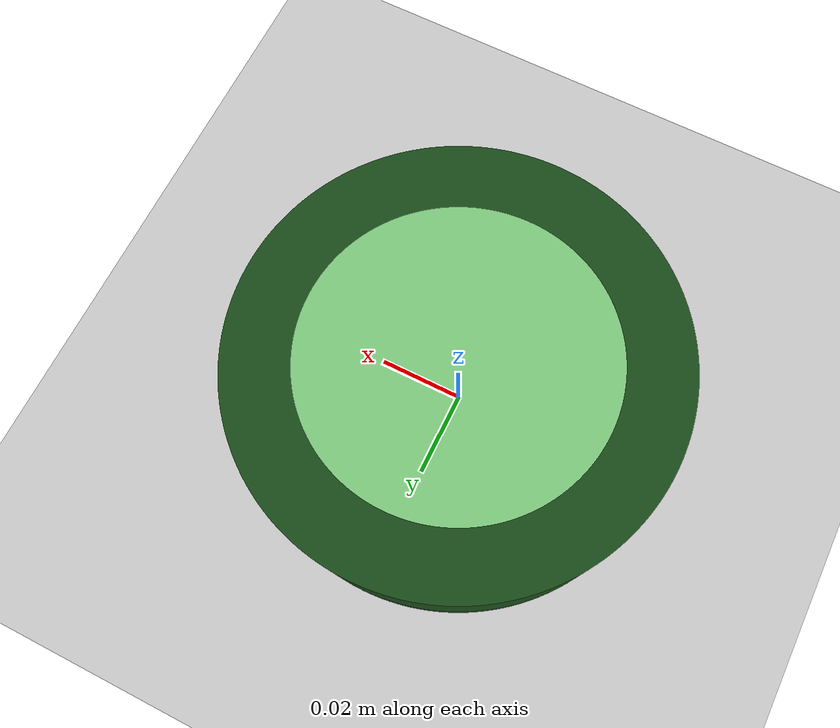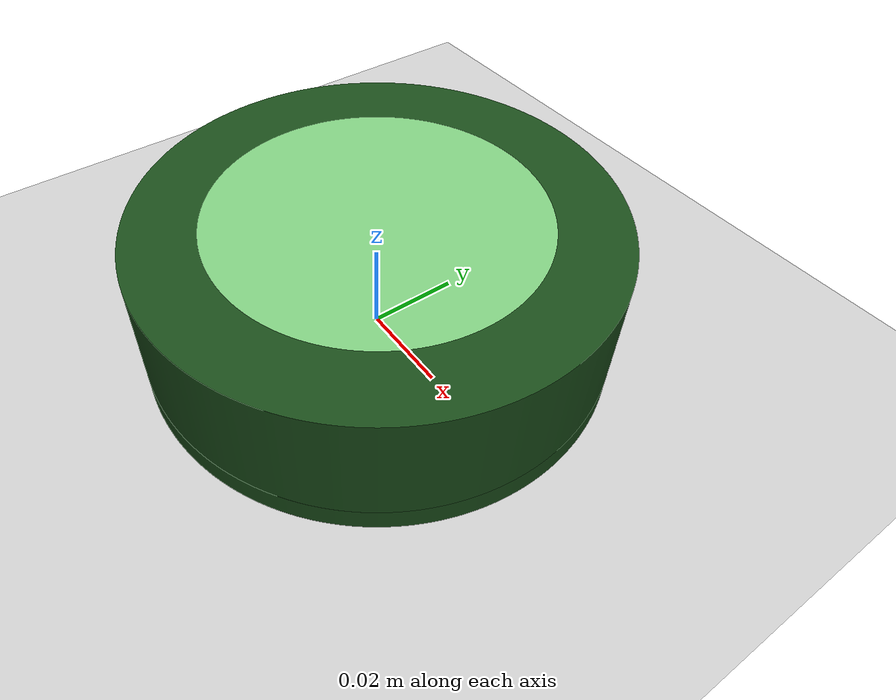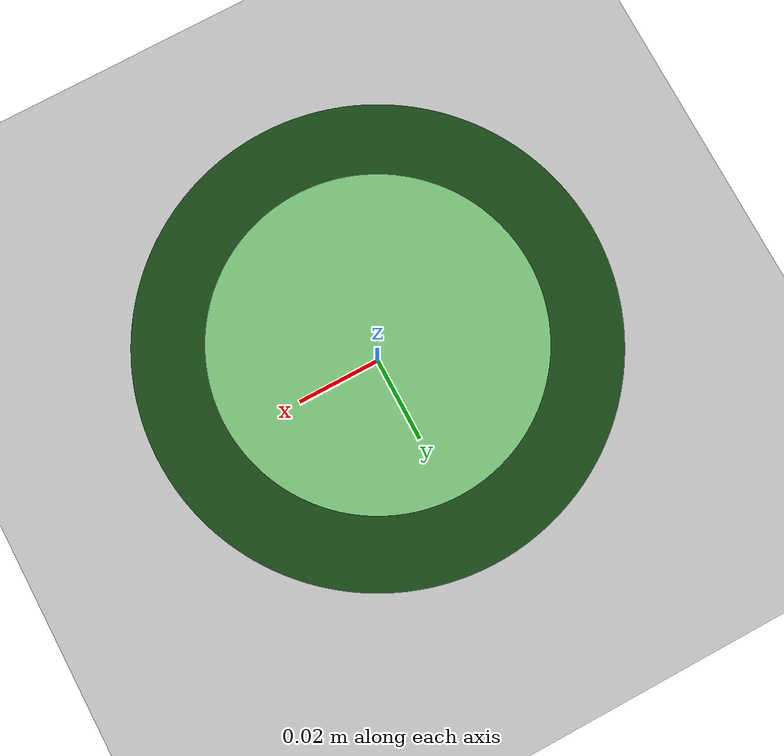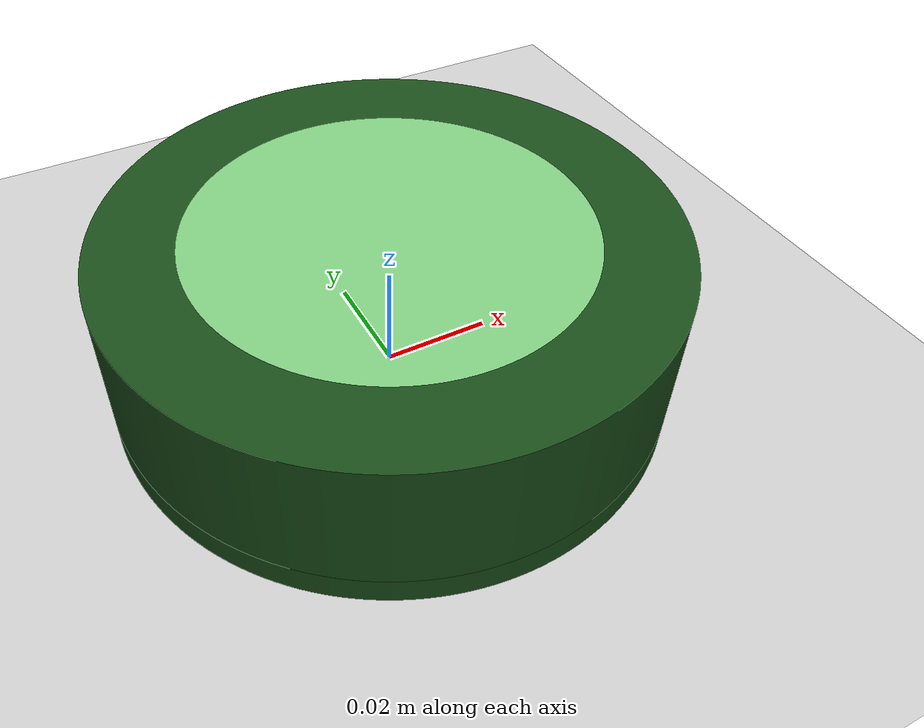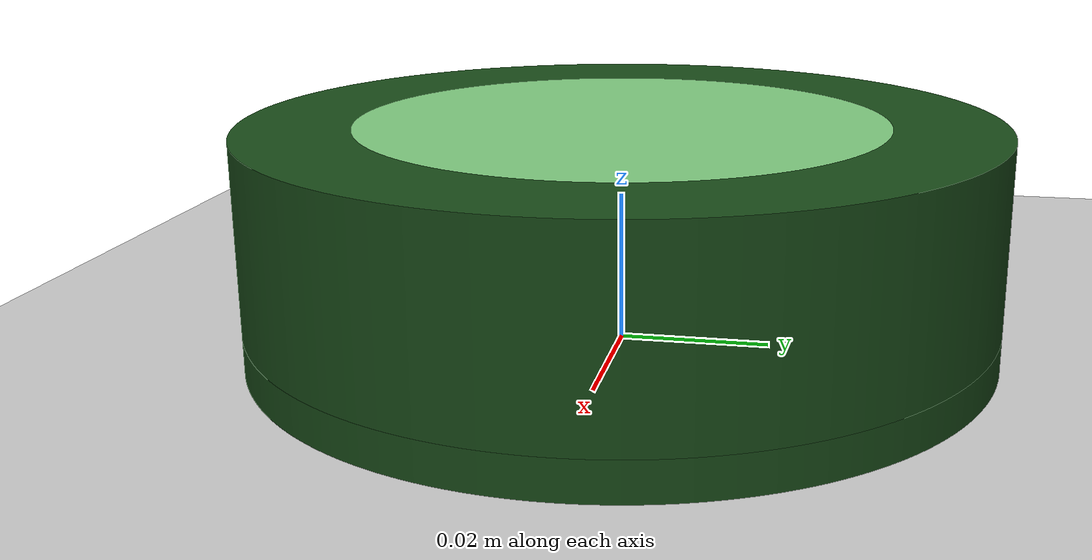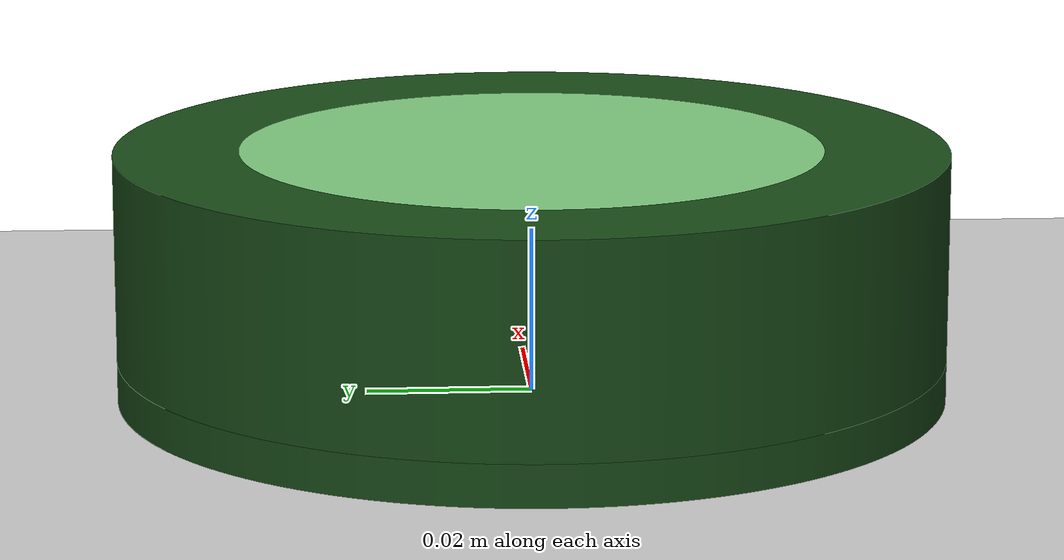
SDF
<?xml version="1.0" ?>
<sdf version="1.5">
  <world name="default">

    <!-- A global light source -->
    <include>
      <uri>model://sun</uri>
    </include>

    <!-- A ground plane -->
    <include>
      <uri>model://ground_plane</uri>
    </include>

    <include>
      <uri>model://DREAM_simple_button/</uri>
    </include>
  </world>
</sdf>

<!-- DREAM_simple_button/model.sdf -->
<sdf version="1.4">
  <model name="simple_push_button">
    <!-- The base is just a cylinder -->
    <link name="base">
      <pose>0 0 0.0 0 0 0</pose>
      <inertial>
        <mass>1</mass>
        <inertia>
          <ixx>0.002502083</ixx>
          <iyy>0.002502083</iyy>
          <izz>0.005</izz>
          <ixy>0</ixy>
          <ixz>0</ixz>
          <iyz>0</iyz>
        </inertia>
      </inertial>
      <collision name="base_collision">
        <geometry>
          <mesh>
              <uri>model://DREAM_simple_button/meshes/base_button.dae</uri>
          </mesh>
        </geometry>
        <surface>
          <friction>
            <ode>
              <mu>0.6</mu>
              <mu2>0.6</mu2>
            </ode>
          </friction>
        </surface>
      </collision>
      <visual name="base_visual">
        <geometry>
          <mesh>
              <uri>model://DREAM_simple_button/meshes/base_button.dae</uri>
          </mesh>
        </geometry>
        <material>
          <diffuse>0.1 0.3 0.1 1</diffuse>
          <ambient>0.1 0.15 0.1 1</ambient>
          <specular>0.5 0.6 0.5 1</specular>
          <emissive>0 0 0 0</emissive>
        </material>
        <plugin name="color_plugin" filename="libDREAM_change_color.so"/>
      </visual>
    </link>

    <link name="cylinder">
      <!-- Offset by the height of the base -->
      <pose>0 0 0.005 0 0 0</pose>
      <inertial>
        <mass>1</mass>
        <inertia>
          <ixx>0.003777083</ixx>
          <iyy>0.003777083</iyy>
          <izz>0.00745</izz>
          <ixy>0</ixy>
          <ixz>0</ixz>
          <iyz>0</iyz>
        </inertia>
      </inertial>
      <collision name="cylinder_collision">
        <geometry>
          <mesh>
              <uri>model://DREAM_simple_button/meshes/base_cylinder.dae</uri>
          </mesh>
        </geometry>
        <surface>
          <friction>
            <ode>
              <mu>0.6</mu>
              <mu2>0.6</mu2>
            </ode>
          </friction>
        </surface>
      </collision>
      <visual name="cylinder_visual">
        <geometry>
          <mesh>
              <uri>model://DREAM_simple_button/meshes/base_cylinder.dae</uri>
          </mesh>
        </geometry>
        <material>
          <diffuse>0.1 0.3 0.1 1</diffuse>
          <ambient>0.1 0.15 0.1 1</ambient>
          <specular>0.5 0.6 0.5 1</specular>
          <emissive>0 0 0 0</emissive>
        </material>
        <plugin name="color_plugin" filename="libDREAM_change_color.so"/>
      </visual>
    </link>

    <link name="button">
      <!-- Offset by the height of the base -->
      <pose>0 0 0.005 0 0 0</pose>
      <inertial>
        <mass>0.1</mass>
        <inertia>
          <ixx>0.0001277083</ixx>
          <iyy>0.0001277083</iyy>
          <izz>0.000245</izz>
          <ixy>0</ixy>
          <ixz>0</ixz>
          <iyz>0</iyz>
        </inertia>
      </inertial>
      <collision name="button_collision">
        <geometry>
          <mesh>
              <uri>model://DREAM_simple_button/meshes/button.dae</uri>
          </mesh>
        </geometry>
        <surface>
          <friction>
            <ode>
              <mu>0.6</mu>
              <mu2>0.6</mu2>
            </ode>
          </friction>
        </surface>
      </collision>
      <visual name="button_visual">
        <geometry>
          <mesh>
              <uri>model://DREAM_simple_button/meshes/button.dae</uri>
          </mesh>
        </geometry>
        <material>
          <diffuse>0.5 0.8 0.5 1</diffuse>
          <ambient>0.1 0.25 0.1 1</ambient>
          <specular>0.7 0.9 0.7 1</specular>
          <emissive>0 0 0 0</emissive>
        </material>
        <plugin name="color_plugin" filename="libDREAM_change_color.so"/>
      </visual>
    </link>

    <joint type="fixed" name="base_cylinder_fixation">
      <pose>0 0 0 0 0 0</pose>
      <parent>base</parent>
      <child>cylinder</child>
      <!-- The axis defines the joint's degree of freedom -->
      <axis>
        <!-- z-axis -->
        <xyz>0 0 0</xyz>
        <!-- Limit refers to the range of motion of the joint -->
        <limit>
          <lower>0</lower>
          <upper>0</upper>
        </limit>
      </axis>
    </joint>

    <joint type="prismatic" name="glider">
      <!-- Position the joint at the bottom of the button -->
      <pose>0 0 0 0 0 0</pose>
      <parent>base</parent>
      <child>button</child>
      <!-- The axis defines the joint's degree of freedom -->
      <axis>
        <!-- z-axis -->
        <xyz>0 0 1</xyz>
        <!-- Limit refers to the range of motion of the joint -->
        <limit>
          <lower>0</lower>
          <upper>0.01</upper>
        </limit>
      </axis>
    </joint>

  <plugin name="push_button" filename="libDREAM_button_spring.so"/>
  <plugin name="sensor" filename="libDREAM_button_sensor.so"/>
  </model>
</sdf>
